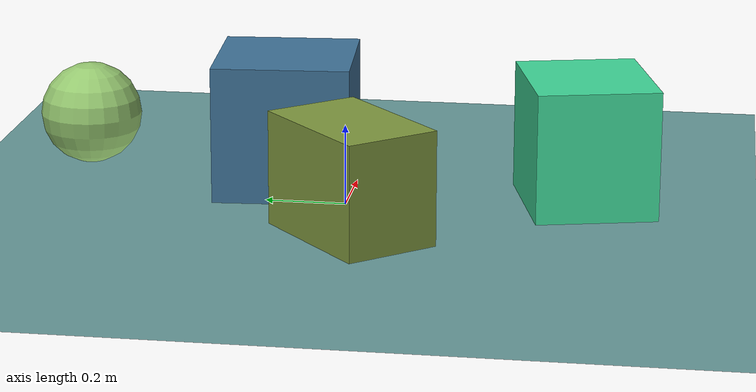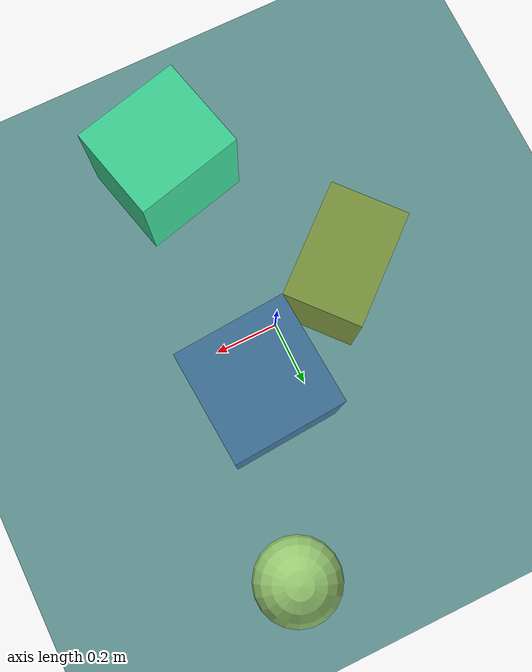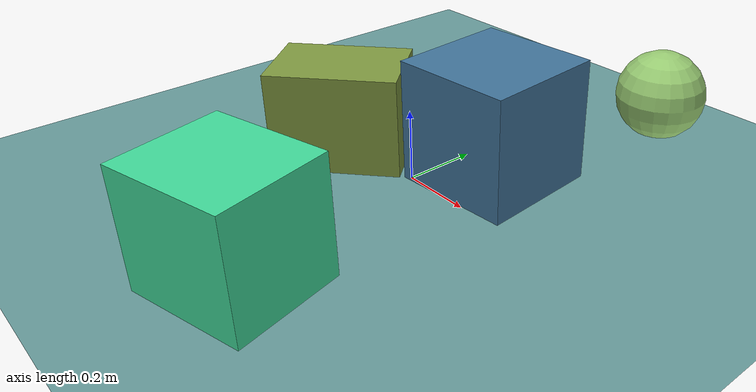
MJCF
<mujoco>
   <asset>
<texture type="skybox" builtin="gradient" rgb1="1.0 0.2 0.3" rgb2="0.3 0.3 0.2" width="256" height="256"/>
<texture name="gradient_0" builtin="gradient" rgb1="0.5 0.7 0.4" rgb2="0.5 0.5 0.1" width="200" height="200"/>
<texture name="checker_1" builtin="checker" rgb1="0.7 0.8 0.7" rgb2="0.5 0.8 0.2" width="200" height="200"/>
<texture name="gradient_2" builtin="gradient" rgb1="0.0 0.4 0.8" rgb2="0.5 0.5 0.4" width="200" height="200"/>
<texture name="checker_3" builtin="checker" rgb1="0.3 0.7 0.6" rgb2="0.2 1.0 0.6" width="200" height="200"/><material name="gradient_0_mat" reflectance="0" texture="gradient_0" texuniform="true"/>
<material name="checker_1_mat" reflectance="0" texrepeat="6 6" texture="checker_1" texuniform="false" />
<material name="gradient_2_mat" reflectance="0" texture="gradient_2" texuniform="true"/>
<material name="checker_3_mat" reflectance="0" texrepeat="9 9" texture="checker_3" texuniform="false" />
   </asset>

   <worldbody>
      <light diffuse=".9 .9 .9" pos="0 0 3" dir="0 0 -1"/>
     <geom type="plane" size="1 1 0.1" rgba="0.4 0.6 0.6 1"/>
<geom type="box" pos="-0.24 -0.05 0.14" size="0.18 0.12 0.14" material="gradient_0_mat" euler="0 0 41" />
<geom type="sphere" pos="0.28 0.71 0.13" size="0.13 0.13 0.13" material="checker_1_mat" euler="0 0 83" />
<geom type="box" pos="0.14 0.17 0.17" size="0.17 0.17 0.17" material="gradient_2_mat" euler="0 0 4" />
<geom type="box" pos="0.1 -0.58 0.16" size="0.17 0.15 0.16" material="checker_3_mat" euler="0 0 14" /><camera euler="60 0 180" fovy="60" name="camera1" pos="-0.2 -1.5 1"></camera>   </worldbody>
</mujoco>
